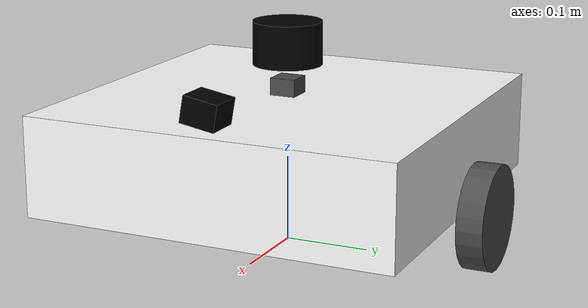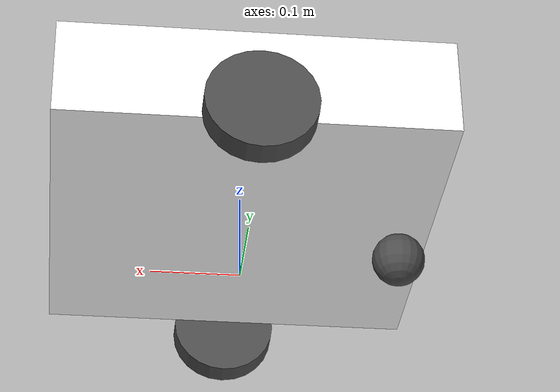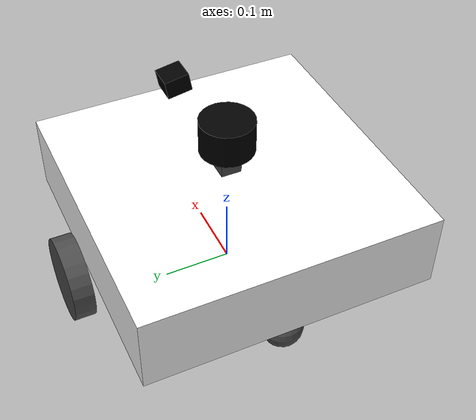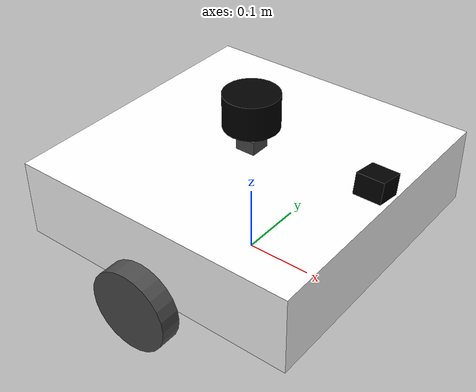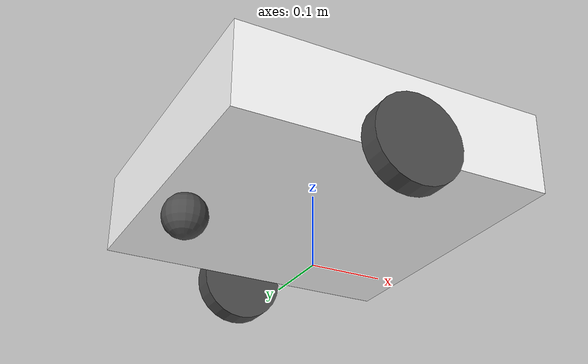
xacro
<?xml version="1.0"?>
<robot name="triangle_bot" xmlns:xacro="http://ros.org/wiki/xacro">

  <!-- ================= PARAMETERS ================= -->
  <xacro:property name="wheel_radius" value="0.06"/>         <!-- 6 cm -->
  <!-- FIXED: was 0.50, but your measured value used everywhere else
       (serial_odom_node.py, overview doc) is 0.48 m. Kept in sync now. -->
  <xacro:property name="wheel_separation" value="0.48"/>     <!-- 48 cm, measured -->
  <xacro:property name="base_height" value="0.115"/>         <!-- 11.5 cm -->
  <xacro:property name="body_side" value="0.43"/>            <!-- 43 cm triangle sides -->
  <xacro:property name="caster_radius" value="0.03"/>
  <xacro:property name="lidar_height" value="0.235"/>        <!-- 23.5 cm from GROUND -->
  <xacro:property name="camera_height" value="0.20"/>        <!-- 20 cm from GROUND -->
  <xacro:property name="camera_tilt" value="-10"/>           <!-- downward 10 deg -->
  <!-- 'pi' is a built-in xacro constant (math.pi) — no need to define it,
       leaving it undefined does NOT break ${camera_tilt * pi / 180} below. -->
  <xacro:property name="mass_total" value="4.5"/>
  <xacro:property name="mass_wheel" value="0.25"/>

  <material name="white"><color rgba="1 1 1 1"/></material>
  <material name="gray"><color rgba="0.3 0.3 0.3 1"/></material>
  <material name="black"><color rgba="0 0 0 1"/></material>

  <!-- ================= BASE LINK ================= -->
  <link name="base_footprint" />

  <joint name="base_joint" type="fixed">
      <parent link="base_footprint"/>
      <child link="base_link"/>
      <!-- base_link's origin sits one wheel-radius above the ground.
           Everything below that is relative to THIS origin, not the ground -
           this is the source of the old height bugs. -->
      <origin xyz="0 0 ${wheel_radius}" rpy="0 0 0" />
  </joint>

  <link name="base_link">
    <visual>
      <geometry>
        <box size="${body_side} ${body_side} ${base_height}"/>
      </geometry>
      <material name="white"/>
      <origin xyz="0 0 ${base_height/2}" rpy="0 0 0"/>
    </visual>

    <collision>
      <geometry>
        <box size="${body_side} ${body_side} ${base_height}"/>
      </geometry>
      <origin xyz="0 0 ${base_height/2}" rpy="0 0 0"/>
    </collision>

    <inertial>
      <mass value="${mass_total - 2*mass_wheel}"/>
      <origin xyz="0 0 ${base_height/2}" rpy="0 0 0"/>
      <inertia
        ixx="0.02" ixy="0.0" ixz="0.0"
        iyy="0.02" iyz="0.0"
        izz="0.03"/>
    </inertial>
  </link>

  <!-- ================= LEFT WHEEL ================= -->
  <link name="left_wheel_link">
    <visual>
      <geometry>
        <cylinder radius="${wheel_radius}" length="0.03"/>
      </geometry>
      <material name="gray"/>
      <origin xyz="0 0 0" rpy="1.5708 0 0"/>
    </visual>
    <collision>
      <geometry>
        <cylinder radius="${wheel_radius}" length="0.03"/>
      </geometry>
      <origin xyz="0 0 0" rpy="1.5708 0 0"/>
    </collision>
    <inertial>
      <mass value="${mass_wheel}"/>
      <inertia
        ixx="0.0005" ixy="0" ixz="0"
        iyy="0.0009" iyz="0"
        izz="0.0005"/>
    </inertial>
  </link>

  <joint name="left_wheel_joint" type="continuous">
    <parent link="base_link"/>
    <child link="left_wheel_link"/>
    <origin xyz="0 ${wheel_separation/2} 0" rpy="0 0 0"/>
    <axis xyz="0 1 0"/>
  </joint>

  <!-- ================= RIGHT WHEEL ================= -->
  <link name="right_wheel_link">
    <visual>
      <geometry>
        <cylinder radius="${wheel_radius}" length="0.03"/>
      </geometry>
      <material name="gray"/>
      <origin xyz="0 0 0" rpy="1.5708 0 0"/>
    </visual>
    <collision>
      <geometry>
        <cylinder radius="${wheel_radius}" length="0.03"/>
      </geometry>
      <origin xyz="0 0 0" rpy="1.5708 0 0"/>
    </collision>
    <inertial>
      <mass value="${mass_wheel}"/>
      <inertia
        ixx="0.0005" ixy="0" ixz="0"
        iyy="0.0009" iyz="0"
        izz="0.0005"/>
    </inertial>
  </link>

  <joint name="right_wheel_joint" type="continuous">
    <parent link="base_link"/>
    <child link="right_wheel_link"/>
    <!-- FIXED: same double-counted height bug as left wheel -->
    <origin xyz="0 -${wheel_separation/2} 0" rpy="0 0 0"/>
    <axis xyz="0 1 0"/>
  </joint>

  <!-- ================= REAR CASTER WHEEL ================= -->
  <link name="rear_caster_link">
    <visual>
      <geometry>
        <sphere radius="${caster_radius}"/>
      </geometry>
      <material name="gray"/>
      <origin xyz="0 0 0" rpy="0 0 0"/>
    </visual>
    <collision>
      <geometry>
        <sphere radius="${caster_radius}"/>
      </geometry>
      <origin xyz="0 0 0" rpy="0 0 0"/>
    </collision>
    <inertial>
      <mass value="0.05"/>
      <inertia ixx="0.00002" ixy="0" ixz="0" iyy="0.00002" iyz="0" izz="0.00002"/>
    </inertial>
  </link>

  <joint name="rear_caster_joint" type="fixed">
    <parent link="base_link"/>
    <child link="rear_caster_link"/>
    <origin xyz="-0.18 0 ${-wheel_radius + caster_radius}" rpy="0 0 0"/>
  </joint>

  <!-- ================= LIDAR ================= -->
  <link name="lidar_link">
    <visual>
      <geometry>
        <cylinder radius="0.04" length="0.05"/>
      </geometry>
      <material name="black"/>
      <origin xyz="0 0 0" rpy="0 0 0"/>
    </visual>
    <inertial>
      <mass value="0.15"/>
      <inertia ixx="0.00005" ixy="0" ixz="0" iyy="0.00005" iyz="0" izz="0.00005"/>
    </inertial>
  </link>

  <joint name="lidar_joint" type="fixed">
    <parent link="base_link"/>
    <child link="lidar_link"/>
    <origin xyz="0 0 ${lidar_height - wheel_radius}" rpy="0 0 0"/>
  </joint>

  <!-- ================= CAMERA ================= -->
  <link name="camera_link">
    <visual>
      <geometry>
        <box size="0.04 0.04 0.03"/>
      </geometry>
      <material name="black"/>
      <origin xyz="0 0 0" rpy="0 0 0"/>
    </visual>
    <inertial>
      <mass value="0.05"/>
      <inertia ixx="0.00002" ixy="0" ixz="0" iyy="0.00002" iyz="0" izz="0.00002"/>
    </inertial>
  </link>

  <joint name="camera_joint" type="fixed">
    <parent link="base_link"/>
    <child link="camera_link"/>
    <!-- FIXED: same "from ground" vs "from base_link" mismatch as the lidar -->
    <origin xyz="${body_side/2 - 0.02} 0 ${camera_height - wheel_radius}"
            rpy="${camera_tilt * pi / 180} 0 0"/>
  </joint>

  <!-- ================= IMU ================= -->
  <link name="imu_link">
    <visual>
      <geometry>
        <box size="0.03 0.03 0.02"/>
      </geometry>
      <material name="gray"/>
      <origin xyz="0 0 0" rpy="0 0 0"/>
    </visual>
    <inertial>
      <mass value="0.02"/>
      <inertia ixx="0.00001" ixy="0" ixz="0" iyy="0.00001" iyz="0" izz="0.00001"/>
    </inertial>
  </link>

  <joint name="imu_joint" type="fixed">
    <parent link="base_link"/>
    <child link="imu_link"/>
    <!-- Not documented as "from ground", so left as an offset from base_link
         (sits just above the body's top face). Unchanged. -->
    <origin xyz="0 0 ${base_height + 0.01}" rpy="0 0 0"/>
  </joint>

  <ros2_control name="TriangleBotSystem" type="system">
    <hardware>
      <plugin>diff_drive_controller/DiffDriveController</plugin>
    </hardware>
    <joint name="left_wheel_joint">
      <command_interface name="velocity"/>
      <state_interface name="velocity"/>
      <state_interface name="position"/>
    </joint>
    <joint name="right_wheel_joint">
      <command_interface name="velocity"/>
      <state_interface name="velocity"/>
      <state_interface name="position"/>
    </joint>
  </ros2_control>

</robot>
